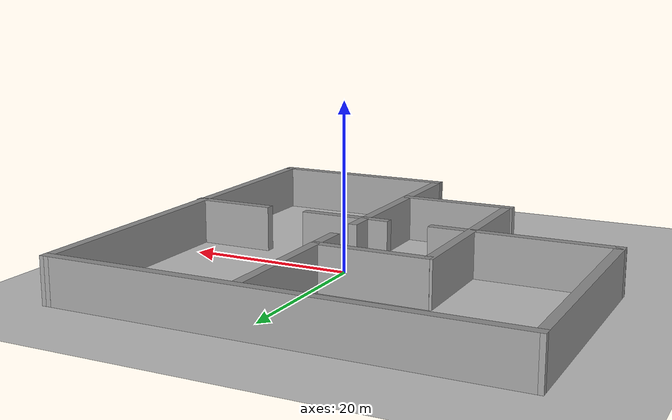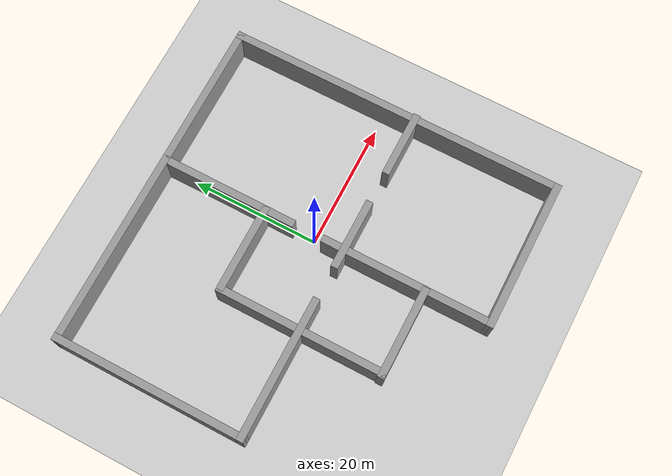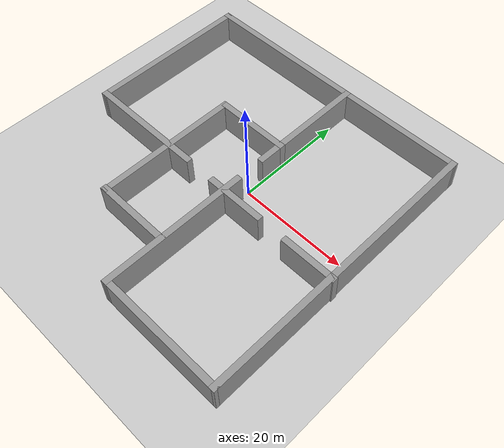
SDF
<sdf version="1.6">
 <world name="default">
  <light name="sun" type="directional">
   <pose>0 0 10 0 -0 0</pose>
   <diffuse>0.8 0.8 0.8 1</diffuse>
   <specular>0.2 0.2 0.2 1</specular>
   <attenuation>
    <range>1000</range>
    <constant>0.9</constant>
    <linear>0.01</linear>
    <quadratic>0.001</quadratic>
   </attenuation>
   <direction>-0.5 0.1 -0.9</direction>
  </light>
  <model name="ground_plane">
   <static>1</static>
   <link name="link">
    <collision name="collision">
     <geometry><plane><normal>0 0 1</normal><size>100 100</size></plane></geometry>
     <surface><friction><ode><mu>100</mu><mu2>50</mu2></ode></friction></surface>
    </collision>
    <visual name="visual">
     <cast_shadows>0</cast_shadows>
     <geometry><plane><normal>0 0 1</normal><size>100 100</size></plane></geometry>
     <material>
      <script><uri>file://media/materials/scripts/gazebo.material</uri><name>Gazebo/Grey</name></script>
     </material>
    </visual>
   </link>
  </model>
  <gravity>0 0 -9.8</gravity>
  <magnetic_field>6e-06 2.3e-05 -4.2e-05</magnetic_field>
  <atmosphere type="adiabatic"/>
  <physics name="default_physics" default="0" type="ode">
   <max_step_size>0.001</max_step_size>
   <real_time_factor>1</real_time_factor>
   <real_time_update_rate>1000</real_time_update_rate>
  </physics>
  <scene><ambient>0.4 0.4 0.4 1</ambient><background>0.7 0.7 0.7 1</background><shadows>1</shadows></scene>
  <audio><device>default</device></audio>
  <spherical_coordinates>
   <surface_model>EARTH_WGS84</surface_model>
   <latitude_deg>0</latitude_deg>
   <longitude_deg>0</longitude_deg>
   <elevation>0</elevation>
   <heading_deg>0</heading_deg>
  </spherical_coordinates>
  <model name="house2">
   <pose>-3.90213 -1.78088 0 0 -0 0</pose>
   <link name="Wall_49">
    <collision name="Wall_49_Collision">
     <geometry><box><size>53.9901 1.14 5.5</size></box></geometry>
     <pose>0 0 2.75 0 -0 0</pose>
    </collision>
    <visual name="Wall_49_Visual">
     <pose>0 0 2.75 0 -0 0</pose>
     <geometry><box><size>53.9901 1.14 5.5</size></box></geometry>
     <material>
      <script><uri>file://media/materials/scripts/gazebo.material</uri><name>Gazebo/Grey</name></script>
      <ambient>1 1 1 1</ambient>
     </material>
     <meta><layer>0</layer></meta>
    </visual>
    <pose>-0.092873 26.3019 0 0 -0 0.000908</pose>
   </link>
   <link name="Wall_50">
    <collision name="Wall_50_Collision">
     <geometry><box><size>53.7401 1.14 5.5</size></box></geometry>
     <pose>0 0 2.75 0 -0 0</pose>
    </collision>
    <visual name="Wall_50_Visual">
     <pose>0 0 2.75 0 -0 0</pose>
     <geometry><box><size>53.7401 1.14 5.5</size></box></geometry>
     <material>
      <script><uri>file://media/materials/scripts/gazebo.material</uri><name>Gazebo/Grey</name></script>
      <ambient>1 1 1 1</ambient>
     </material>
     <meta><layer>0</layer></meta>
    </visual>
    <pose>26.3321 0.025879 0 0 -0 -1.5708</pose>
   </link>
   <link name="Wall_54">
    <collision name="Wall_54_Collision">
     <geometry><box><size>27.24 1.14 5.5</size></box></geometry>
     <pose>0 0 2.75 0 -0 0</pose>
    </collision>
    <visual name="Wall_54_Visual">
     <pose>0 0 2.75 0 -0 0</pose>
     <geometry><box><size>27.24 1.14 5.5</size></box></geometry>
     <material>
      <script><uri>file://media/materials/scripts/gazebo.material</uri><name>Gazebo/Grey</name></script>
      <ambient>1 1 1 1</ambient>
     </material>
     <meta><layer>0</layer></meta>
    </visual>
    <pose>3.56913 -13.2751 0 0 -0 1.5708</pose>
   </link>
   <link name="Wall_59">
    <collision name="Wall_59_Collision">
     <geometry><box><size>30.519 1.14 5.5</size></box></geometry>
     <pose>0 0 2.75 0 -0 0</pose>
    </collision>
    <visual name="Wall_59_Visual">
     <pose>0 0 2.75 0 -0 0</pose>
     <geometry><box><size>30.519 1.14 5.5</size></box></geometry>
     <material>
      <script><uri>file://media/materials/scripts/gazebo.material</uri><name>Gazebo/Grey</name></script>
      <ambient>1 1 1 1</ambient>
     </material>
     <meta><layer>0</layer></meta>
    </visual>
    <pose>-26.5244 11.5884 0 0 -0 -1.57124</pose>
   </link>
   <link name="Wall_61">
    <collision name="Wall_61_Collision">
     <geometry><box><size>21.99 1.14 5.5</size></box></geometry>
     <pose>0 0 2.75 0 -0 0</pose>
    </collision>
    <visual name="Wall_61_Visual">
     <pose>0 0 2.75 0 -0 0</pose>
     <geometry><box><size>21.99 1.14 5.5</size></box></geometry>
     <material>
      <script><uri>file://media/materials/scripts/gazebo.material</uri><name>Gazebo/Grey</name></script>
      <ambient>1 1 1 1</ambient>
     </material>
     <meta><layer>0</layer></meta>
    </visual>
    <pose>3.55913 15.8669 0 0 -0 -1.5708</pose>
   </link>
   <link name="Wall_64">
    <collision name="Wall_64_Collision">
     <geometry><box><size>14.114 1.14 5.5</size></box></geometry>
     <pose>0 0 2.75 0 -0 0</pose>
    </collision>
    <visual name="Wall_64_Visual">
     <pose>0 0 2.75 0 -0 0</pose>
     <geometry><box><size>14.114 1.14 5.5</size></box></geometry>
     <material>
      <script><uri>file://media/materials/scripts/gazebo.material</uri><name>Gazebo/Grey</name></script>
      <ambient>1 1 1 1</ambient>
     </material>
     <meta><layer>0</layer></meta>
    </visual>
    <pose>-2.92787 9.61088 0 0 -0 3.14159</pose>
   </link>
   <link name="Wall_69">
    <collision name="Wall_69_Collision">
     <geometry><box><size>3.75 0.15 2.5</size></box></geometry>
     <pose>0 0 1.25 0 -0 0</pose>
    </collision>
    <visual name="Wall_69_Visual">
     <pose>0 0 1.25 0 -0 0</pose>
     <geometry><box><size>3.75 0.15 2.5</size></box></geometry>
     <material>
      <script><uri>file://media/materials/scripts/gazebo.material</uri><name>Gazebo/Grey</name></script>
      <ambient>1 1 1 1</ambient>
     </material>
     <meta><layer>0</layer></meta>
    </visual>
    <pose>3.54643 -1.48293 0 0 -0 -1.5708</pose>
   </link>
   <link name="Wall_71">
    <collision name="Wall_71_Collision">
     <geometry><box><size>11.24 1.14 5.5</size></box></geometry>
     <pose>0 0 2.75 0 -0 0</pose>
    </collision>
    <visual name="Wall_71_Visual">
     <pose>0 0 2.75 0 -0 0</pose>
     <geometry><box><size>11.24 1.14 5.5</size></box></geometry>
     <material>
      <script><uri>file://media/materials/scripts/gazebo.material</uri><name>Gazebo/Grey</name></script>
      <ambient>1 1 1 1</ambient>
     </material>
     <meta><layer>0</layer></meta>
    </visual>
    <pose>6.10613 -3.17712 0 0 -0 0</pose>
   </link>
   <link name="Wall_73">
    <collision name="Wall_73_Collision">
     <geometry><box><size>10.49 1.14 5.5</size></box></geometry>
     <pose>0 0 2.75 0 -0 0</pose>
    </collision>
    <visual name="Wall_73_Visual">
     <pose>0 0 2.75 0 -0 0</pose>
     <geometry><box><size>10.49 1.14 5.5</size></box></geometry>
     <material>
      <script><uri>file://media/materials/scripts/gazebo.material</uri><name>Gazebo/Grey</name></script>
      <ambient>1 1 1 1</ambient>
     </material>
     <meta><layer>0</layer></meta>
    </visual>
    <pose>21.8561 -3.24812 0 0 -0 0</pose>
   </link>
   <link name="Wall_78">
    <collision name="Wall_78_Collision">
     <geometry><box><size>22.4904 1.14 5.5</size></box></geometry>
     <pose>0 0 2.75 0 -0 0</pose>
    </collision>
    <visual name="Wall_78_Visual">
     <pose>0 0 2.75 0 -0 0</pose>
     <geometry><box><size>22.4904 1.14 5.5</size></box></geometry>
     <material>
      <script><uri>file://media/materials/scripts/gazebo.material</uri><name>Gazebo/Grey</name></script>
      <ambient>1 1 1 1</ambient>
     </material>
     <meta><layer>0</layer></meta>
    </visual>
    <pose>-15.8559 -3.10112 0 0 -0 0</pose>
   </link>
   <link name="Wall_87">
    <collision name="Wall_87_Collision">
     <geometry><box><size>14.4905 1.14 5.5</size></box></geometry>
     <pose>0 0 2.75 0 -0 0</pose>
    </collision>
    <visual name="Wall_87_Visual">
     <pose>0 0 2.75 0 -0 0</pose>
     <geometry><box><size>14.4905 1.14 5.5</size></box></geometry>
     <material>
      <script><uri>file://media/materials/scripts/gazebo.material</uri><name>Gazebo/Grey</name></script>
      <ambient>1 1 1 1</ambient>
     </material>
     <meta><layer>0</layer></meta>
    </visual>
    <pose>-3.25887 -16.1001 0 0 -0 0</pose>
   </link>
   <link name="Wall_89">
    <collision name="Wall_89_Collision">
     <geometry><box><size>26.7401 1.14 5.5</size></box></geometry>
     <pose>0 0 2.75 0 -0 0</pose>
    </collision>
    <visual name="Wall_89_Visual">
     <pose>0 0 2.75 0 -0 0</pose>
     <geometry><box><size>26.7401 1.14 5.5</size></box></geometry>
     <material>
      <script><uri>file://media/materials/scripts/gazebo.material</uri><name>Gazebo/Grey</name></script>
      <ambient>1 1 1 1</ambient>
     </material>
     <meta><layer>0</layer></meta>
    </visual>
    <pose>-9.74187 -3.20912 0 0 -0 -1.5708</pose>
   </link>
   <link name="Wall_92">
    <collision name="Wall_92_Collision">
     <geometry><box><size>23.9031 1.14 5.5</size></box></geometry>
     <pose>0 0 2.75 0 -0 0</pose>
    </collision>
    <visual name="Wall_92_Visual">
     <pose>0 0 2.75 0 -0 0</pose>
     <geometry><box><size>23.9031 1.14 5.5</size></box></geometry>
     <material>
      <script><uri>file://media/materials/scripts/gazebo.material</uri><name>Gazebo/Grey</name></script>
      <ambient>1 1 1 1</ambient>
     </material>
     <meta><layer>0</layer></meta>
    </visual>
    <pose>14.9506 -26.2996 0 0 -0 0.00224</pose>
   </link>
   <static>1</static>
  </model>
 </world>
</sdf>
